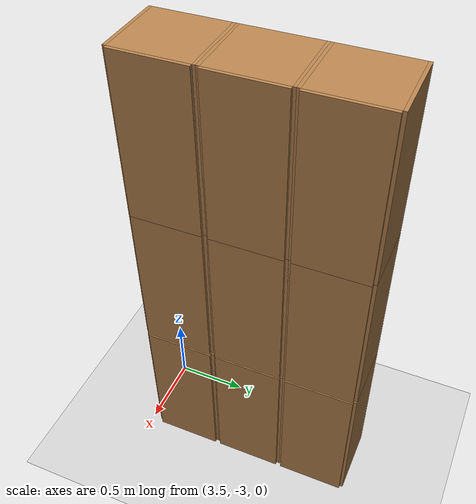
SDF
<sdf version="1.6">
 <world name="default">
  <model name="ground_plane">
   <static>1</static>
   <link name="link">
    <collision name="collision">
     <geometry><plane><normal>0 0 1</normal><size>100 100</size></plane></geometry>
     <surface>
      <contact><collide_bitmask>65535</collide_bitmask></contact>
      <friction><ode><mu>100</mu><mu2>50</mu2></ode></friction>
     </surface>
    </collision>
    <visual name="visual">
     <cast_shadows>0</cast_shadows>
     <geometry><plane><normal>0 0 1</normal><size>100 100</size></plane></geometry>
     <material>
      <script><uri>file://media/materials/scripts/gazebo.material</uri><name>Gazebo/Grey</name></script>
     </material>
    </visual>
   </link>
  </model>
  <model name="Locker18_clone_3">
   <model name="Locker18">
    <model name="Locker3">
     <model name="cabinet">
      <static>1</static>
      <link name="cabinet_bottom_plate">
       <inertial>
        <pose>0 0 -1 0 -0 0</pose>
        <inertia><ixx>2.05</ixx><ixy>0</ixy><ixz>0</ixz><iyy>2.05</iyy><iyz>0</iyz><izz>2.05</izz></inertia>
        <mass>25</mass>
       </inertial>
       <collision name="cabinet_bottom_plate_geom">
        <pose>0 0 0.01 0 -0 0</pose>
        <geometry><box><size>0.45 0.45 0.02</size></box></geometry>
       </collision>
       <visual name="cabinet_bottom_plate_geom_visual">
        <pose>0 0 0.01 0 -0 0</pose>
        <geometry><box><size>0.45 0.45 0.02</size></box></geometry>
        <material>
         <script><uri>file://media/materials/scripts/gazebo.material</uri><name>Gazebo/Wood</name></script>
        </material>
       </visual>
       <collision name="cabinet_bottom_plate_geom_cabinet_back_plate">
        <pose>0.235 0 0.51 0 -0 0</pose>
        <geometry><box><size>0.02 0.45 1.02</size></box></geometry>
       </collision>
       <visual name="cabinet_bottom_plate_geom_cabinet_back_plate_visual">
        <pose>0.235 0 0.51 0 -0 0</pose>
        <geometry><box><size>0.02 0.45 1.02</size></box></geometry>
        <material>
         <script><uri>file://media/materials/scripts/gazebo.material</uri><name>Gazebo/Wood</name></script>
        </material>
       </visual>
       <collision name="cabinet_bottom_plate_geom_cabinet_left_plate">
        <pose>0 0.235 0.51 0 -0 0</pose>
        <geometry><box><size>0.45 0.02 1.02</size></box></geometry>
       </collision>
       <visual name="cabinet_bottom_plate_geom_cabinet_left_plate_visual">
        <pose>0 0.235 0.51 0 -0 0</pose>
        <geometry><box><size>0.45 0.02 1.02</size></box></geometry>
        <material>
         <script><uri>file://media/materials/scripts/gazebo.material</uri><name>Gazebo/Wood</name></script>
        </material>
       </visual>
       <collision name="cabinet_bottom_plate_geom_cabinet_middle_plate">
        <pose>0 0 0.51 0 -0 0</pose>
        <geometry><box><size>0.45 0.45 0.02</size></box></geometry>
       </collision>
       <visual name="cabinet_bottom_plate_geom_cabinet_middle_plate_visual">
        <pose>0 0 0.51 0 -0 0</pose>
        <geometry><box><size>0.45 0.45 0.02</size></box></geometry>
        <material>
         <script><uri>file://media/materials/scripts/gazebo.material</uri><name>Gazebo/Wood</name></script>
        </material>
       </visual>
       <collision name="cabinet_bottom_plate_geom_cabinet_right_plate">
        <pose>0 -0.235 0.51 0 -0 0</pose>
        <geometry><box><size>0.45 0.02 1.02</size></box></geometry>
       </collision>
       <visual name="cabinet_bottom_plate_geom_cabinet_right_plate_visual">
        <pose>0 -0.235 0.51 0 -0 0</pose>
        <geometry><box><size>0.45 0.02 1.02</size></box></geometry>
        <material>
         <script><uri>file://media/materials/scripts/gazebo.material</uri><name>Gazebo/Wood</name></script>
        </material>
       </visual>
       <collision name="cabinet_bottom_plate_geom_cabinet_top_plate">
        <pose>0 0 1.01 0 -0 0</pose>
        <geometry><box><size>0.45 0.45 0.02</size></box></geometry>
       </collision>
       <visual name="cabinet_bottom_plate_geom_cabinet_top_plate_visual">
        <pose>0 0 1.01 0 -0 0</pose>
        <geometry><box><size>0.45 0.45 0.02</size></box></geometry>
        <material>
         <script><uri>file://media/materials/scripts/gazebo.material</uri><name>Gazebo/Wood</name></script>
        </material>
       </visual>
      </link>
      <pose>-0.676968 1.45758 0 0 -0 0</pose>
     </model>
     <model name="cabinet_clone">
      <static>1</static>
      <link name="cabinet_bottom_plate">
       <inertial>
        <pose>0 0 -1 0 -0 0</pose>
        <inertia><ixx>2.05</ixx><ixy>0</ixy><ixz>0</ixz><iyy>2.05</iyy><iyz>0</iyz><izz>2.05</izz></inertia>
        <mass>25</mass>
       </inertial>
       <collision name="cabinet_bottom_plate_geom">
        <pose>0 0 0.01 0 -0 0</pose>
        <geometry><box><size>0.45 0.45 0.02</size></box></geometry>
       </collision>
       <visual name="cabinet_bottom_plate_geom_visual">
        <pose>0 0 0.01 0 -0 0</pose>
        <geometry><box><size>0.45 0.45 0.02</size></box></geometry>
        <material>
         <script><uri>file://media/materials/scripts/gazebo.material</uri><name>Gazebo/Wood</name></script>
        </material>
       </visual>
       <collision name="cabinet_bottom_plate_geom_cabinet_back_plate">
        <pose>0.235 0 0.51 0 -0 0</pose>
        <geometry><box><size>0.02 0.45 1.02</size></box></geometry>
       </collision>
       <visual name="cabinet_bottom_plate_geom_cabinet_back_plate_visual">
        <pose>0.235 0 0.51 0 -0 0</pose>
        <geometry><box><size>0.02 0.45 1.02</size></box></geometry>
        <material>
         <script><uri>file://media/materials/scripts/gazebo.material</uri><name>Gazebo/Wood</name></script>
        </material>
       </visual>
       <collision name="cabinet_bottom_plate_geom_cabinet_left_plate">
        <pose>0 0.235 0.51 0 -0 0</pose>
        <geometry><box><size>0.45 0.02 1.02</size></box></geometry>
       </collision>
       <visual name="cabinet_bottom_plate_geom_cabinet_left_plate_visual">
        <pose>0 0.235 0.51 0 -0 0</pose>
        <geometry><box><size>0.45 0.02 1.02</size></box></geometry>
        <material>
         <script><uri>file://media/materials/scripts/gazebo.material</uri><name>Gazebo/Wood</name></script>
        </material>
       </visual>
       <collision name="cabinet_bottom_plate_geom_cabinet_middle_plate">
        <pose>0 0 0.51 0 -0 0</pose>
        <geometry><box><size>0.45 0.45 0.02</size></box></geometry>
       </collision>
       <visual name="cabinet_bottom_plate_geom_cabinet_middle_plate_visual">
        <pose>0 0 0.51 0 -0 0</pose>
        <geometry><box><size>0.45 0.45 0.02</size></box></geometry>
        <material>
         <script><uri>file://media/materials/scripts/gazebo.material</uri><name>Gazebo/Wood</name></script>
        </material>
       </visual>
       <collision name="cabinet_bottom_plate_geom_cabinet_right_plate">
        <pose>0 -0.235 0.51 0 -0 0</pose>
        <geometry><box><size>0.45 0.02 1.02</size></box></geometry>
       </collision>
       <visual name="cabinet_bottom_plate_geom_cabinet_right_plate_visual">
        <pose>0 -0.235 0.51 0 -0 0</pose>
        <geometry><box><size>0.45 0.02 1.02</size></box></geometry>
        <material>
         <script><uri>file://media/materials/scripts/gazebo.material</uri><name>Gazebo/Wood</name></script>
        </material>
       </visual>
       <collision name="cabinet_bottom_plate_geom_cabinet_top_plate">
        <pose>0 0 1.01 0 -0 0</pose>
        <geometry><box><size>0.45 0.45 0.02</size></box></geometry>
       </collision>
       <visual name="cabinet_bottom_plate_geom_cabinet_top_plate_visual">
        <pose>0 0 1.01 0 -0 0</pose>
        <geometry><box><size>0.45 0.45 0.02</size></box></geometry>
        <material>
         <script><uri>file://media/materials/scripts/gazebo.material</uri><name>Gazebo/Wood</name></script>
        </material>
       </visual>
      </link>
      <pose>-0.676968 0.970971 0 0 -0 0</pose>
     </model>
     <model name="cabinet_clone_0">
      <static>1</static>
      <link name="cabinet_bottom_plate">
       <inertial>
        <pose>0 0 -1 0 -0 0</pose>
        <inertia><ixx>2.05</ixx><ixy>0</ixy><ixz>0</ixz><iyy>2.05</iyy><iyz>0</iyz><izz>2.05</izz></inertia>
        <mass>25</mass>
       </inertial>
       <collision name="cabinet_bottom_plate_geom">
        <pose>0 0 0.01 0 -0 0</pose>
        <geometry><box><size>0.45 0.45 0.02</size></box></geometry>
       </collision>
       <visual name="cabinet_bottom_plate_geom_visual">
        <pose>0 0 0.01 0 -0 0</pose>
        <geometry><box><size>0.45 0.45 0.02</size></box></geometry>
        <material>
         <script><uri>file://media/materials/scripts/gazebo.material</uri><name>Gazebo/Wood</name></script>
        </material>
       </visual>
       <collision name="cabinet_bottom_plate_geom_cabinet_back_plate">
        <pose>0.235 0 0.51 0 -0 0</pose>
        <geometry><box><size>0.02 0.45 1.02</size></box></geometry>
       </collision>
       <visual name="cabinet_bottom_plate_geom_cabinet_back_plate_visual">
        <pose>0.235 0 0.51 0 -0 0</pose>
        <geometry><box><size>0.02 0.45 1.02</size></box></geometry>
        <material>
         <script><uri>file://media/materials/scripts/gazebo.material</uri><name>Gazebo/Wood</name></script>
        </material>
       </visual>
       <collision name="cabinet_bottom_plate_geom_cabinet_left_plate">
        <pose>0 0.235 0.51 0 -0 0</pose>
        <geometry><box><size>0.45 0.02 1.02</size></box></geometry>
       </collision>
       <visual name="cabinet_bottom_plate_geom_cabinet_left_plate_visual">
        <pose>0 0.235 0.51 0 -0 0</pose>
        <geometry><box><size>0.45 0.02 1.02</size></box></geometry>
        <material>
         <script><uri>file://media/materials/scripts/gazebo.material</uri><name>Gazebo/Wood</name></script>
        </material>
       </visual>
       <collision name="cabinet_bottom_plate_geom_cabinet_middle_plate">
        <pose>0 0 0.51 0 -0 0</pose>
        <geometry><box><size>0.45 0.45 0.02</size></box></geometry>
       </collision>
       <visual name="cabinet_bottom_plate_geom_cabinet_middle_plate_visual">
        <pose>0 0 0.51 0 -0 0</pose>
        <geometry><box><size>0.45 0.45 0.02</size></box></geometry>
        <material>
         <script><uri>file://media/materials/scripts/gazebo.material</uri><name>Gazebo/Wood</name></script>
        </material>
       </visual>
       <collision name="cabinet_bottom_plate_geom_cabinet_right_plate">
        <pose>0 -0.235 0.51 0 -0 0</pose>
        <geometry><box><size>0.45 0.02 1.02</size></box></geometry>
       </collision>
       <visual name="cabinet_bottom_plate_geom_cabinet_right_plate_visual">
        <pose>0 -0.235 0.51 0 -0 0</pose>
        <geometry><box><size>0.45 0.02 1.02</size></box></geometry>
        <material>
         <script><uri>file://media/materials/scripts/gazebo.material</uri><name>Gazebo/Wood</name></script>
        </material>
       </visual>
       <collision name="cabinet_bottom_plate_geom_cabinet_top_plate">
        <pose>0 0 1.01 0 -0 0</pose>
        <geometry><box><size>0.45 0.45 0.02</size></box></geometry>
       </collision>
       <visual name="cabinet_bottom_plate_geom_cabinet_top_plate_visual">
        <pose>0 0 1.01 0 -0 0</pose>
        <geometry><box><size>0.45 0.45 0.02</size></box></geometry>
        <material>
         <script><uri>file://media/materials/scripts/gazebo.material</uri><name>Gazebo/Wood</name></script>
        </material>
       </visual>
      </link>
      <pose>-0.676968 0.48391 0 0 -0 0</pose>
     </model>
     <static>0</static>
     <pose>0 3e-06 -1.02763 0 -0 0</pose>
    </model>
    <model name="Locker3_clone">
     <model name="cabinet">
      <static>1</static>
      <link name="cabinet_bottom_plate">
       <inertial>
        <pose>0 0 -1 0 -0 0</pose>
        <inertia><ixx>2.05</ixx><ixy>0</ixy><ixz>0</ixz><iyy>2.05</iyy><iyz>0</iyz><izz>2.05</izz></inertia>
        <mass>25</mass>
       </inertial>
       <collision name="cabinet_bottom_plate_geom">
        <pose>0 0 0.01 0 -0 0</pose>
        <geometry><box><size>0.45 0.45 0.02</size></box></geometry>
       </collision>
       <visual name="cabinet_bottom_plate_geom_visual">
        <pose>0 0 0.01 0 -0 0</pose>
        <geometry><box><size>0.45 0.45 0.02</size></box></geometry>
        <material>
         <script><uri>file://media/materials/scripts/gazebo.material</uri><name>Gazebo/Wood</name></script>
        </material>
       </visual>
       <collision name="cabinet_bottom_plate_geom_cabinet_back_plate">
        <pose>0.235 0 0.51 0 -0 0</pose>
        <geometry><box><size>0.02 0.45 1.02</size></box></geometry>
       </collision>
       <visual name="cabinet_bottom_plate_geom_cabinet_back_plate_visual">
        <pose>0.235 0 0.51 0 -0 0</pose>
        <geometry><box><size>0.02 0.45 1.02</size></box></geometry>
        <material>
         <script><uri>file://media/materials/scripts/gazebo.material</uri><name>Gazebo/Wood</name></script>
        </material>
       </visual>
       <collision name="cabinet_bottom_plate_geom_cabinet_left_plate">
        <pose>0 0.235 0.51 0 -0 0</pose>
        <geometry><box><size>0.45 0.02 1.02</size></box></geometry>
       </collision>
       <visual name="cabinet_bottom_plate_geom_cabinet_left_plate_visual">
        <pose>0 0.235 0.51 0 -0 0</pose>
        <geometry><box><size>0.45 0.02 1.02</size></box></geometry>
        <material>
         <script><uri>file://media/materials/scripts/gazebo.material</uri><name>Gazebo/Wood</name></script>
        </material>
       </visual>
       <collision name="cabinet_bottom_plate_geom_cabinet_middle_plate">
        <pose>0 0 0.51 0 -0 0</pose>
        <geometry><box><size>0.45 0.45 0.02</size></box></geometry>
       </collision>
       <visual name="cabinet_bottom_plate_geom_cabinet_middle_plate_visual">
        <pose>0 0 0.51 0 -0 0</pose>
        <geometry><box><size>0.45 0.45 0.02</size></box></geometry>
        <material>
         <script><uri>file://media/materials/scripts/gazebo.material</uri><name>Gazebo/Wood</name></script>
        </material>
       </visual>
       <collision name="cabinet_bottom_plate_geom_cabinet_right_plate">
        <pose>0 -0.235 0.51 0 -0 0</pose>
        <geometry><box><size>0.45 0.02 1.02</size></box></geometry>
       </collision>
       <visual name="cabinet_bottom_plate_geom_cabinet_right_plate_visual">
        <pose>0 -0.235 0.51 0 -0 0</pose>
        <geometry><box><size>0.45 0.02 1.02</size></box></geometry>
        <material>
         <script><uri>file://media/materials/scripts/gazebo.material</uri><name>Gazebo/Wood</name></script>
        </material>
       </visual>
       <collision name="cabinet_bottom_plate_geom_cabinet_top_plate">
        <pose>0 0 1.01 0 -0 0</pose>
        <geometry><box><size>0.45 0.45 0.02</size></box></geometry>
       </collision>
       <visual name="cabinet_bottom_plate_geom_cabinet_top_plate_visual">
        <pose>0 0 1.01 0 -0 0</pose>
        <geometry><box><size>0.45 0.45 0.02</size></box></geometry>
        <material>
         <script><uri>file://media/materials/scripts/gazebo.material</uri><name>Gazebo/Wood</name></script>
        </material>
       </visual>
      </link>
      <pose>-0.676968 1.45758 0 0 -0 0</pose>
     </model>
     <model name="cabinet_clone">
      <static>1</static>
      <link name="cabinet_bottom_plate">
       <inertial>
        <pose>0 0 -1 0 -0 0</pose>
        <inertia><ixx>2.05</ixx><ixy>0</ixy><ixz>0</ixz><iyy>2.05</iyy><iyz>0</iyz><izz>2.05</izz></inertia>
        <mass>25</mass>
       </inertial>
       <collision name="cabinet_bottom_plate_geom">
        <pose>0 0 0.01 0 -0 0</pose>
        <geometry><box><size>0.45 0.45 0.02</size></box></geometry>
       </collision>
       <visual name="cabinet_bottom_plate_geom_visual">
        <pose>0 0 0.01 0 -0 0</pose>
        <geometry><box><size>0.45 0.45 0.02</size></box></geometry>
        <material>
         <script><uri>file://media/materials/scripts/gazebo.material</uri><name>Gazebo/Wood</name></script>
        </material>
       </visual>
       <collision name="cabinet_bottom_plate_geom_cabinet_back_plate">
        <pose>0.235 0 0.51 0 -0 0</pose>
        <geometry><box><size>0.02 0.45 1.02</size></box></geometry>
       </collision>
       <visual name="cabinet_bottom_plate_geom_cabinet_back_plate_visual">
        <pose>0.235 0 0.51 0 -0 0</pose>
        <geometry><box><size>0.02 0.45 1.02</size></box></geometry>
        <material>
         <script><uri>file://media/materials/scripts/gazebo.material</uri><name>Gazebo/Wood</name></script>
        </material>
       </visual>
       <collision name="cabinet_bottom_plate_geom_cabinet_left_plate">
        <pose>0 0.235 0.51 0 -0 0</pose>
        <geometry><box><size>0.45 0.02 1.02</size></box></geometry>
       </collision>
       <visual name="cabinet_bottom_plate_geom_cabinet_left_plate_visual">
        <pose>0 0.235 0.51 0 -0 0</pose>
        <geometry><box><size>0.45 0.02 1.02</size></box></geometry>
        <material>
         <script><uri>file://media/materials/scripts/gazebo.material</uri><name>Gazebo/Wood</name></script>
        </material>
       </visual>
       <collision name="cabinet_bottom_plate_geom_cabinet_middle_plate">
        <pose>0 0 0.51 0 -0 0</pose>
        <geometry><box><size>0.45 0.45 0.02</size></box></geometry>
       </collision>
       <visual name="cabinet_bottom_plate_geom_cabinet_middle_plate_visual">
        <pose>0 0 0.51 0 -0 0</pose>
        <geometry><box><size>0.45 0.45 0.02</size></box></geometry>
        <material>
         <script><uri>file://media/materials/scripts/gazebo.material</uri><name>Gazebo/Wood</name></script>
        </material>
       </visual>
       <collision name="cabinet_bottom_plate_geom_cabinet_right_plate">
        <pose>0 -0.235 0.51 0 -0 0</pose>
        <geometry><box><size>0.45 0.02 1.02</size></box></geometry>
       </collision>
       <visual name="cabinet_bottom_plate_geom_cabinet_right_plate_visual">
        <pose>0 -0.235 0.51 0 -0 0</pose>
        <geometry><box><size>0.45 0.02 1.02</size></box></geometry>
        <material>
         <script><uri>file://media/materials/scripts/gazebo.material</uri><name>Gazebo/Wood</name></script>
        </material>
       </visual>
       <collision name="cabinet_bottom_plate_geom_cabinet_top_plate">
        <pose>0 0 1.01 0 -0 0</pose>
        <geometry><box><size>0.45 0.45 0.02</size></box></geometry>
       </collision>
       <visual name="cabinet_bottom_plate_geom_cabinet_top_plate_visual">
        <pose>0 0 1.01 0 -0 0</pose>
        <geometry><box><size>0.45 0.45 0.02</size></box></geometry>
        <material>
         <script><uri>file://media/materials/scripts/gazebo.material</uri><name>Gazebo/Wood</name></script>
        </material>
       </visual>
      </link>
      <pose>-0.676968 0.970971 0 0 -0 0</pose>
     </model>
     <model name="cabinet_clone_0">
      <static>1</static>
      <link name="cabinet_bottom_plate">
       <inertial>
        <pose>0 0 -1 0 -0 0</pose>
        <inertia><ixx>2.05</ixx><ixy>0</ixy><ixz>0</ixz><iyy>2.05</iyy><iyz>0</iyz><izz>2.05</izz></inertia>
        <mass>25</mass>
       </inertial>
       <collision name="cabinet_bottom_plate_geom">
        <pose>0 0 0.01 0 -0 0</pose>
        <geometry><box><size>0.45 0.45 0.02</size></box></geometry>
       </collision>
       <visual name="cabinet_bottom_plate_geom_visual">
        <pose>0 0 0.01 0 -0 0</pose>
        <geometry><box><size>0.45 0.45 0.02</size></box></geometry>
        <material>
         <script><uri>file://media/materials/scripts/gazebo.material</uri><name>Gazebo/Wood</name></script>
        </material>
       </visual>
       <collision name="cabinet_bottom_plate_geom_cabinet_back_plate">
        <pose>0.235 0 0.51 0 -0 0</pose>
        <geometry><box><size>0.02 0.45 1.02</size></box></geometry>
       </collision>
       <visual name="cabinet_bottom_plate_geom_cabinet_back_plate_visual">
        <pose>0.235 0 0.51 0 -0 0</pose>
        <geometry><box><size>0.02 0.45 1.02</size></box></geometry>
        <material>
         <script><uri>file://media/materials/scripts/gazebo.material</uri><name>Gazebo/Wood</name></script>
        </material>
       </visual>
       <collision name="cabinet_bottom_plate_geom_cabinet_left_plate">
        <pose>0 0.235 0.51 0 -0 0</pose>
        <geometry><box><size>0.45 0.02 1.02</size></box></geometry>
       </collision>
       <visual name="cabinet_bottom_plate_geom_cabinet_left_plate_visual">
        <pose>0 0.235 0.51 0 -0 0</pose>
        <geometry><box><size>0.45 0.02 1.02</size></box></geometry>
        <material>
         <script><uri>file://media/materials/scripts/gazebo.material</uri><name>Gazebo/Wood</name></script>
        </material>
       </visual>
       <collision name="cabinet_bottom_plate_geom_cabinet_middle_plate">
        <pose>0 0 0.51 0 -0 0</pose>
        <geometry><box><size>0.45 0.45 0.02</size></box></geometry>
       </collision>
       <visual name="cabinet_bottom_plate_geom_cabinet_middle_plate_visual">
        <pose>0 0 0.51 0 -0 0</pose>
        <geometry><box><size>0.45 0.45 0.02</size></box></geometry>
        <material>
         <script><uri>file://media/materials/scripts/gazebo.material</uri><name>Gazebo/Wood</name></script>
        </material>
       </visual>
       <collision name="cabinet_bottom_plate_geom_cabinet_right_plate">
        <pose>0 -0.235 0.51 0 -0 0</pose>
        <geometry><box><size>0.45 0.02 1.02</size></box></geometry>
       </collision>
       <visual name="cabinet_bottom_plate_geom_cabinet_right_plate_visual">
        <pose>0 -0.235 0.51 0 -0 0</pose>
        <geometry><box><size>0.45 0.02 1.02</size></box></geometry>
        <material>
         <script><uri>file://media/materials/scripts/gazebo.material</uri><name>Gazebo/Wood</name></script>
        </material>
       </visual>
       <collision name="cabinet_bottom_plate_geom_cabinet_top_plate">
        <pose>0 0 1.01 0 -0 0</pose>
        <geometry><box><size>0.45 0.45 0.02</size></box></geometry>
       </collision>
       <visual name="cabinet_bottom_plate_geom_cabinet_top_plate_visual">
        <pose>0 0 1.01 0 -0 0</pose>
        <geometry><box><size>0.45 0.45 0.02</size></box></geometry>
        <material>
         <script><uri>file://media/materials/scripts/gazebo.material</uri><name>Gazebo/Wood</name></script>
        </material>
       </visual>
      </link>
      <pose>-0.676968 0.48391 0 0 -0 0</pose>
     </model>
     <static>0</static>
     <pose>0 3e-06 0.003717 0 -0 0</pose>
    </model>
    <model name="Locker3_clone_clone">
     <model name="cabinet">
      <static>1</static>
      <link name="cabinet_bottom_plate">
       <inertial>
        <pose>0 0 -1 0 -0 0</pose>
        <inertia><ixx>2.05</ixx><ixy>0</ixy><ixz>0</ixz><iyy>2.05</iyy><iyz>0</iyz><izz>2.05</izz></inertia>
        <mass>25</mass>
       </inertial>
       <collision name="cabinet_bottom_plate_geom">
        <pose>0 0 0.01 0 -0 0</pose>
        <geometry><box><size>0.45 0.45 0.02</size></box></geometry>
       </collision>
       <visual name="cabinet_bottom_plate_geom_visual">
        <pose>0 0 0.01 0 -0 0</pose>
        <geometry><box><size>0.45 0.45 0.02</size></box></geometry>
        <material>
         <script><uri>file://media/materials/scripts/gazebo.material</uri><name>Gazebo/Wood</name></script>
        </material>
       </visual>
       <collision name="cabinet_bottom_plate_geom_cabinet_back_plate">
        <pose>0.235 0 0.51 0 -0 0</pose>
        <geometry><box><size>0.02 0.45 1.02</size></box></geometry>
       </collision>
       <visual name="cabinet_bottom_plate_geom_cabinet_back_plate_visual">
        <pose>0.235 0 0.51 0 -0 0</pose>
        <geometry><box><size>0.02 0.45 1.02</size></box></geometry>
        <material>
         <script><uri>file://media/materials/scripts/gazebo.material</uri><name>Gazebo/Wood</name></script>
        </material>
       </visual>
       <collision name="cabinet_bottom_plate_geom_cabinet_left_plate">
        <pose>0 0.235 0.51 0 -0 0</pose>
        <geometry><box><size>0.45 0.02 1.02</size></box></geometry>
       </collision>
       <visual name="cabinet_bottom_plate_geom_cabinet_left_plate_visual">
        <pose>0 0.235 0.51 0 -0 0</pose>
        <geometry><box><size>0.45 0.02 1.02</size></box></geometry>
        <material>
         <script><uri>file://media/materials/scripts/gazebo.material</uri><name>Gazebo/Wood</name></script>
        </material>
       </visual>
       <collision name="cabinet_bottom_plate_geom_cabinet_middle_plate">
        <pose>0 0 0.51 0 -0 0</pose>
        <geometry><box><size>0.45 0.45 0.02</size></box></geometry>
       </collision>
       <visual name="cabinet_bottom_plate_geom_cabinet_middle_plate_visual">
        <pose>0 0 0.51 0 -0 0</pose>
        <geometry><box><size>0.45 0.45 0.02</size></box></geometry>
        <material>
         <script><uri>file://media/materials/scripts/gazebo.material</uri><name>Gazebo/Wood</name></script>
        </material>
       </visual>
       <collision name="cabinet_bottom_plate_geom_cabinet_right_plate">
        <pose>0 -0.235 0.51 0 -0 0</pose>
        <geometry><box><size>0.45 0.02 1.02</size></box></geometry>
       </collision>
       <visual name="cabinet_bottom_plate_geom_cabinet_right_plate_visual">
        <pose>0 -0.235 0.51 0 -0 0</pose>
        <geometry><box><size>0.45 0.02 1.02</size></box></geometry>
        <material>
         <script><uri>file://media/materials/scripts/gazebo.material</uri><name>Gazebo/Wood</name></script>
        </material>
       </visual>
       <collision name="cabinet_bottom_plate_geom_cabinet_top_plate">
        <pose>0 0 1.01 0 -0 0</pose>
        <geometry><box><size>0.45 0.45 0.02</size></box></geometry>
       </collision>
       <visual name="cabinet_bottom_plate_geom_cabinet_top_plate_visual">
        <pose>0 0 1.01 0 -0 0</pose>
        <geometry><box><size>0.45 0.45 0.02</size></box></geometry>
        <material>
         <script><uri>file://media/materials/scripts/gazebo.material</uri><name>Gazebo/Wood</name></script>
        </material>
       </visual>
      </link>
      <pose>-0.676968 1.45758 0 0 -0 0</pose>
     </model>
     <model name="cabinet_clone">
      <static>1</static>
      <link name="cabinet_bottom_plate">
       <inertial>
        <pose>0 0 -1 0 -0 0</pose>
        <inertia><ixx>2.05</ixx><ixy>0</ixy><ixz>0</ixz><iyy>2.05</iyy><iyz>0</iyz><izz>2.05</izz></inertia>
        <mass>25</mass>
       </inertial>
       <collision name="cabinet_bottom_plate_geom">
        <pose>0 0 0.01 0 -0 0</pose>
        <geometry><box><size>0.45 0.45 0.02</size></box></geometry>
       </collision>
       <visual name="cabinet_bottom_plate_geom_visual">
        <pose>0 0 0.01 0 -0 0</pose>
        <geometry><box><size>0.45 0.45 0.02</size></box></geometry>
        <material>
         <script><uri>file://media/materials/scripts/gazebo.material</uri><name>Gazebo/Wood</name></script>
        </material>
       </visual>
       <collision name="cabinet_bottom_plate_geom_cabinet_back_plate">
        <pose>0.235 0 0.51 0 -0 0</pose>
        <geometry><box><size>0.02 0.45 1.02</size></box></geometry>
       </collision>
       <visual name="cabinet_bottom_plate_geom_cabinet_back_plate_visual">
        <pose>0.235 0 0.51 0 -0 0</pose>
        <geometry><box><size>0.02 0.45 1.02</size></box></geometry>
        <material>
         <script><uri>file://media/materials/scripts/gazebo.material</uri><name>Gazebo/Wood</name></script>
        </material>
       </visual>
       <collision name="cabinet_bottom_plate_geom_cabinet_left_plate">
        <pose>0 0.235 0.51 0 -0 0</pose>
        <geometry><box><size>0.45 0.02 1.02</size></box></geometry>
       </collision>
       <visual name="cabinet_bottom_plate_geom_cabinet_left_plate_visual">
        <pose>0 0.235 0.51 0 -0 0</pose>
        <geometry><box><size>0.45 0.02 1.02</size></box></geometry>
        <material>
         <script><uri>file://media/materials/scripts/gazebo.material</uri><name>Gazebo/Wood</name></script>
        </material>
       </visual>
       <collision name="cabinet_bottom_plate_geom_cabinet_middle_plate">
        <pose>0 0 0.51 0 -0 0</pose>
        <geometry><box><size>0.45 0.45 0.02</size></box></geometry>
       </collision>
       <visual name="cabinet_bottom_plate_geom_cabinet_middle_plate_visual">
        <pose>0 0 0.51 0 -0 0</pose>
        <geometry><box><size>0.45 0.45 0.02</size></box></geometry>
        <material>
         <script><uri>file://media/materials/scripts/gazebo.material</uri><name>Gazebo/Wood</name></script>
        </material>
       </visual>
       <collision name="cabinet_bottom_plate_geom_cabinet_right_plate">
        <pose>0 -0.235 0.51 0 -0 0</pose>
        <geometry><box><size>0.45 0.02 1.02</size></box></geometry>
       </collision>
       <visual name="cabinet_bottom_plate_geom_cabinet_right_plate_visual">
        <pose>0 -0.235 0.51 0 -0 0</pose>
        <geometry><box><size>0.45 0.02 1.02</size></box></geometry>
        <material>
         <script><uri>file://media/materials/scripts/gazebo.material</uri><name>Gazebo/Wood</name></script>
        </material>
       </visual>
       <collision name="cabinet_bottom_plate_geom_cabinet_top_plate">
        <pose>0 0 1.01 0 -0 0</pose>
        <geometry><box><size>0.45 0.45 0.02</size></box></geometry>
       </collision>
       <visual name="cabinet_bottom_plate_geom_cabinet_top_plate_visual">
        <pose>0 0 1.01 0 -0 0</pose>
        <geometry><box><size>0.45 0.45 0.02</size></box></geometry>
        <material>
         <script><uri>file://media/materials/scripts/gazebo.material</uri><name>Gazebo/Wood</name></script>
        </material>
       </visual>
      </link>
      <pose>-0.676968 0.970971 0 0 -0 0</pose>
     </model>
     <model name="cabinet_clone_0">
      <static>1</static>
      <link name="cabinet_bottom_plate">
       <inertial>
        <pose>0 0 -1 0 -0 0</pose>
        <inertia><ixx>2.05</ixx><ixy>0</ixy><ixz>0</ixz><iyy>2.05</iyy><iyz>0</iyz><izz>2.05</izz></inertia>
        <mass>25</mass>
       </inertial>
       <collision name="cabinet_bottom_plate_geom">
        <pose>0 0 0.01 0 -0 0</pose>
        <geometry><box><size>0.45 0.45 0.02</size></box></geometry>
       </collision>
       <visual name="cabinet_bottom_plate_geom_visual">
        <pose>0 0 0.01 0 -0 0</pose>
        <geometry><box><size>0.45 0.45 0.02</size></box></geometry>
        <material>
         <script><uri>file://media/materials/scripts/gazebo.material</uri><name>Gazebo/Wood</name></script>
        </material>
       </visual>
       <collision name="cabinet_bottom_plate_geom_cabinet_back_plate">
        <pose>0.235 0 0.51 0 -0 0</pose>
        <geometry><box><size>0.02 0.45 1.02</size></box></geometry>
       </collision>
       <visual name="cabinet_bottom_plate_geom_cabinet_back_plate_visual">
        <pose>0.235 0 0.51 0 -0 0</pose>
        <geometry><box><size>0.02 0.45 1.02</size></box></geometry>
        <material>
         <script><uri>file://media/materials/scripts/gazebo.material</uri><name>Gazebo/Wood</name></script>
        </material>
       </visual>
       <collision name="cabinet_bottom_plate_geom_cabinet_left_plate">
        <pose>0 0.235 0.51 0 -0 0</pose>
        <geometry><box><size>0.45 0.02 1.02</size></box></geometry>
       </collision>
       <visual name="cabinet_bottom_plate_geom_cabinet_left_plate_visual">
        <pose>0 0.235 0.51 0 -0 0</pose>
        <geometry><box><size>0.45 0.02 1.02</size></box></geometry>
        <material>
         <script><uri>file://media/materials/scripts/gazebo.material</uri><name>Gazebo/Wood</name></script>
        </material>
       </visual>
       <collision name="cabinet_bottom_plate_geom_cabinet_middle_plate">
        <pose>0 0 0.51 0 -0 0</pose>
        <geometry><box><size>0.45 0.45 0.02</size></box></geometry>
       </collision>
       <visual name="cabinet_bottom_plate_geom_cabinet_middle_plate_visual">
        <pose>0 0 0.51 0 -0 0</pose>
        <geometry><box><size>0.45 0.45 0.02</size></box></geometry>
        <material>
         <script><uri>file://media/materials/scripts/gazebo.material</uri><name>Gazebo/Wood</name></script>
        </material>
       </visual>
       <collision name="cabinet_bottom_plate_geom_cabinet_right_plate">
        <pose>0 -0.235 0.51 0 -0 0</pose>
        <geometry><box><size>0.45 0.02 1.02</size></box></geometry>
       </collision>
       <visual name="cabinet_bottom_plate_geom_cabinet_right_plate_visual">
        <pose>0 -0.235 0.51 0 -0 0</pose>
        <geometry><box><size>0.45 0.02 1.02</size></box></geometry>
        <material>
         <script><uri>file://media/materials/scripts/gazebo.material</uri><name>Gazebo/Wood</name></script>
        </material>
       </visual>
       <collision name="cabinet_bottom_plate_geom_cabinet_top_plate">
        <pose>0 0 1.01 0 -0 0</pose>
        <geometry><box><size>0.45 0.45 0.02</size></box></geometry>
       </collision>
       <visual name="cabinet_bottom_plate_geom_cabinet_top_plate_visual">
        <pose>0 0 1.01 0 -0 0</pose>
        <geometry><box><size>0.45 0.45 0.02</size></box></geometry>
        <material>
         <script><uri>file://media/materials/scripts/gazebo.material</uri><name>Gazebo/Wood</name></script>
        </material>
       </visual>
      </link>
      <pose>-0.676968 0.48391 0 0 -0 0</pose>
     </model>
     <static>0</static>
     <pose>0 3e-06 1.02391 0 -0 0</pose>
    </model>
    <static>0</static>
    <pose>-0 4e-06 4e-06 0 -0 0</pose>
   </model>
   <static>0</static>
   <pose>4.50277 -3.15132 1.08672 0 -0 0</pose>
  </model>
 </world>
</sdf>
